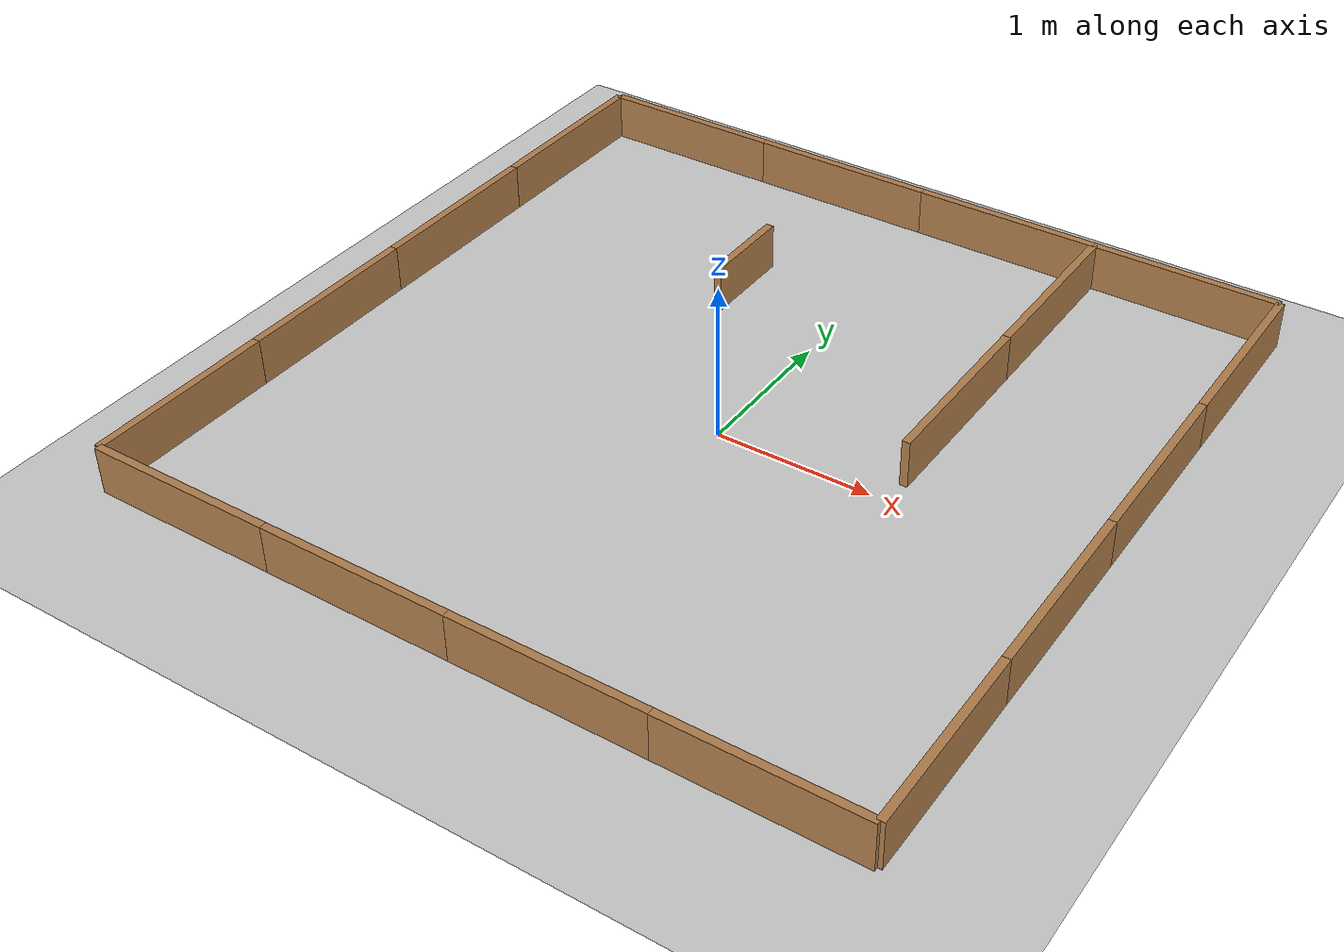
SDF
<?xml version="1.0" ?>
<sdf version="1.8">
  <world name="group1_custom">

    <physics name="default_physics" type="ode">
        <max_step_size>0.005</max_step_size>
        <real_time_factor>1.0</real_time_factor>
        <real_time_update_rate>200</real_time_update_rate>
    </physics>

    <!-- Core Ignition systems (Fortress / Gazebo6) -->
    <plugin filename="libignition-gazebo6-physics-system.so"
            name="ignition::gazebo::systems::Physics"/>

    <plugin filename="libignition-gazebo6-user-commands-system.so"
            name="ignition::gazebo::systems::UserCommands"/>

    <plugin filename="libignition-gazebo6-scene-broadcaster-system.so"
            name="ignition::gazebo::systems::SceneBroadcaster"/>

    <plugin filename="libignition-gazebo6-sensors-system.so"
            name="ignition::gazebo::systems::Sensors"/>

    <!-- Scene configuration -->
    <scene>
      <ambient>0.6 0.6 0.6 1</ambient>
      <background>0.8 0.8 0.8 1</background>
      <shadows>false</shadows>
      <grid>true</grid>
    </scene>

    <!-- Sun light -->
    <light type="directional" name="sun">
      <cast_shadows>false</cast_shadows>
      <pose>0 0 10 0 0 0</pose>
      <diffuse>0.8 0.8 0.8 1</diffuse>
      <specular>0.2 0.2 0.2 1</specular>
      <direction>-0.5 0.1 -0.9</direction>
    </light>

    <!-- Ground plane -->
    <model name="ground_plane">
      <static>true</static>
      <link name="link">
        <collision name="collision">
          <geometry>
            <plane>
              <normal>0 0 1</normal>
              <size>20 20</size>
            </plane>
          </geometry>
        </collision>

        <visual name="visual">
          <geometry>
            <plane>
              <normal>0 0 1</normal>
              <size>20 20</size>
            </plane>
          </geometry>
          <material>
            <ambient>0.8 0.8 0.8 1</ambient>
            <diffuse>0.8 0.8 0.8 1</diffuse>
            <specular>0.1 0.1 0.1 1</specular>
          </material>
        </visual>
      </link>
    </model>

        <!-- ================= MUROS EXTERIORES (cuadrado de 4.8 x 4.8 m) ================= -->

    <!-- Lado superior (y = 2.4) -->
    <include>
      <uri>model://wall120cm</uri>
      <name>top_1</name>
      <pose>-1.8 2.4 0.15 0 0 0</pose>
    </include>
    <include>
      <uri>model://wall120cm</uri>
      <name>top_2</name>
      <pose>-0.6 2.4 0.15 0 0 0</pose>
    </include>
    <include>
      <uri>model://wall120cm</uri>
      <name>top_3</name>
      <pose>0.6 2.4 0.15 0 0 0</pose>
    </include>
    <include>
      <uri>model://wall120cm</uri>
      <name>top_4</name>
      <pose>1.8 2.4 0.15 0 0 0</pose>
    </include>

    <!-- Lado inferior (y = -2.4) -->
    <include>
      <uri>model://wall120cm</uri>
      <name>bottom_1</name>
      <pose>-1.8 -2.4 0.15 0 0 0</pose>
    </include>
    <include>
      <uri>model://wall120cm</uri>
      <name>bottom_2</name>
      <pose>-0.6 -2.4 0.15 0 0 0</pose>
    </include>
    <include>
      <uri>model://wall120cm</uri>
      <name>bottom_3</name>
      <pose>0.6 -2.4 0.15 0 0 0</pose>
    </include>
    <include>
      <uri>model://wall120cm</uri>
      <name>bottom_4</name>
      <pose>1.8 -2.4 0.15 0 0 0</pose>
    </include>

    <!-- Lado izquierdo (x = -2.4) -->
    <include>
      <uri>model://wall120cm</uri>
      <name>left_1</name>
      <pose>-2.4 -1.8 0.15 0 0 1.5708</pose>
    </include>
    <include>
      <uri>model://wall120cm</uri>
      <name>left_2</name>
      <pose>-2.4 -0.6 0.15 0 0 1.5708</pose>
    </include>
    <include>
      <uri>model://wall120cm</uri>
      <name>left_3</name>
      <pose>-2.4 0.6 0.15 0 0 1.5708</pose>
    </include>
    <include>
      <uri>model://wall120cm</uri>
      <name>left_4</name>
      <pose>-2.4 1.8 0.15 0 0 1.5708</pose>
    </include>

    <!-- Lado derecho (x = 2.4) -->
    <include>
      <uri>model://wall120cm</uri>
      <name>right_1</name>
      <pose>2.4 -1.8 0.15 0 0 1.5708</pose>
    </include>
    <include>
      <uri>model://wall120cm</uri>
      <name>right_2</name>
      <pose>2.4 -0.6 0.15 0 0 1.5708</pose>
    </include>
    <include>
      <uri>model://wall120cm</uri>
      <name>right_3</name>
      <pose>2.4 0.6 0.15 0 0 1.5708</pose>
    </include>
    <include>
      <uri>model://wall120cm</uri>
      <name>right_4</name>
      <pose>2.4 1.8 0.15 0 0 1.5708</pose>
    </include>

    <!-- ================= MUROS INTERIORES ================= -->

    <!-- Muro divisor en x = 1.2 (de y = 0 a y = 2.4): crea un pasillo arriba a la derecha -->
    <include>
      <uri>model://wall120cm</uri>
      <name>divider_1</name>
      <pose>1.2 0.6 0.15 0 0 1.5708</pose>
    </include>
    <include>
      <uri>model://wall120cm</uri>
      <name>divider_2</name>
      <pose>1.2 1.8 0.15 0 0 1.5708</pose>
    </include>

    <!-- Obstáculo suelto arriba a la izquierda -->
    <include>
      <uri>model://wall60cm</uri>
      <name>obstacle_1</name>
      <pose>-0.6 1.2 0.15 0 0 1.5708</pose>
    </include>

    <!-- Gazebo Fortress GUI -->
    <gui fullscreen="0">
      <plugin filename="MinimalScene" name="3D View">
        <gz-gui>
          <title>3D View</title>
          <property type="bool" key="showTitleBar">false</property>
          <property type="string" key="state">docked</property>
        </gz-gui>
        <engine>ogre2</engine>
        <scene>scene</scene>
        <camera_pose>0 0 2.5 0 1.5708 0</camera_pose>
      </plugin>

      <plugin filename="GzSceneManager" name="Scene Manager">
        <gz-gui>
          <property key="resizable" type="bool">false</property>
          <property key="width" type="double">1</property>
          <property key="height" type="double">1</property>
          <property key="state" type="string">floating</property>
          <property key="showTitleBar" type="bool">false</property>
        </gz-gui>
      </plugin>

      <plugin filename="InteractiveViewControl" name="Interactive view control">
        <gz-gui>
          <property key="resizable" type="bool">false</property>
          <property key="width" type="double">1</property>
          <property key="height" type="double">1</property>
          <property key="state" type="string">floating</property>
          <property key="showTitleBar" type="bool">false</property>
        </gz-gui>
      </plugin>

      <plugin filename="EntityContextMenuPlugin" name="Entity context menu">
        <gz-gui>
          <property key="resizable" type="bool">false</property>
          <property key="width" type="double">1</property>
          <property key="height" type="double">1</property>
          <property key="state" type="string">floating</property>
          <property key="showTitleBar" type="bool">false</property>
        </gz-gui>
      </plugin>

      <plugin filename="CameraTracking" name="Camera Tracking">
        <gz-gui>
          <property key="width" type="double">1</property>
          <property key="height" type="double">1</property>
          <property key="state" type="string">floating</property>
          <property key="showTitleBar" type="bool">false</property>
        </gz-gui>
      </plugin>

      <plugin filename="ComponentInspector" name="Component inspector"/>
      <plugin filename="EntityTree" name="Entity tree"/>
    </gui>

  </world>
</sdf>

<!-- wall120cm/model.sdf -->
<sdf version='1.7'>
  <model name='wall120cm'>
    <pose>0 0 0 0 0 0</pose>
    <link name='Wall_11'>
      <collision name='Wall_11_Collision'>
        <geometry>
          <box>
            <size>1.2 0.05 0.3</size>
          </box>
        </geometry>
        <pose>0 0 0.15 0 -0 0</pose>
      </collision>
      <visual name='Wall_11_Visual'>
        <pose>0 0 0.15 0 -0 0</pose>
        <geometry>
          <box>
            <size>1.2 0.05 0.3</size>
          </box>
        </geometry>
        <material>
          <script>
            <uri>file://media/materials/scripts/gazebo.material</uri>
            <name>Gazebo/Wood</name>
          </script>
          <ambient>1 1 1 1</ambient>
        </material>
        <meta>
          <layer>0</layer>
        </meta>
      </visual>
      <pose>0 0 0 0 0 0</pose>
    </link>
    <static>1</static>
  </model>
</sdf>

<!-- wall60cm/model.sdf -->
<sdf version='1.7'>
  <model name='wall60cm'>
    <pose>-0 0 0 0 0 0</pose>
    <link name='Wall_4'>
      <collision name='Wall_4_Collision'>
        <geometry>
          <box>
            <size>0.6 0.05 0.3</size>
          </box>
        </geometry>
        <pose>0 0 0.15 0 -0 0</pose>
      </collision>
      <visual name='Wall_4_Visual'>
        <pose>0 0 0.15 0 -0 0</pose>
        <geometry>
          <box>
            <size>0.6 0.05 0.3</size>
          </box>
        </geometry>
        <material>
          <script>
            <uri>file://media/materials/scripts/gazebo.material</uri>
            <name>Gazebo/Wood</name>
          </script>
          <ambient>1 1 1 1</ambient>
        </material>
        <meta>
          <layer>0</layer>
        </meta>
      </visual>
      <pose>0 0 0 0 0 0</pose>
    </link>
    <static>1</static>
  </model>
</sdf>
